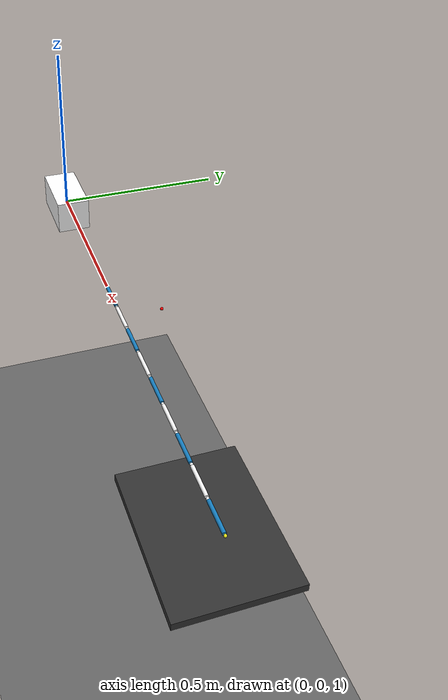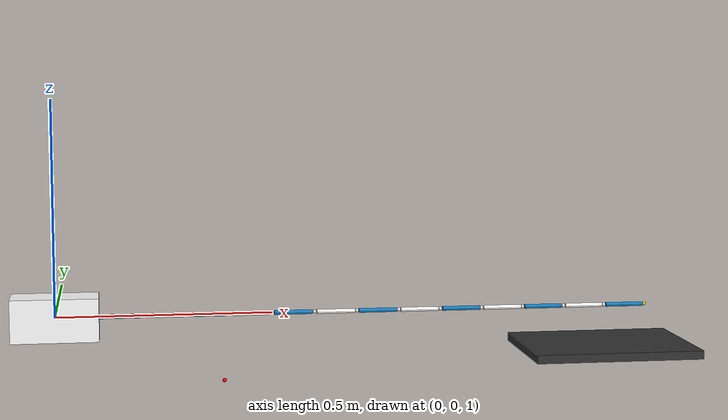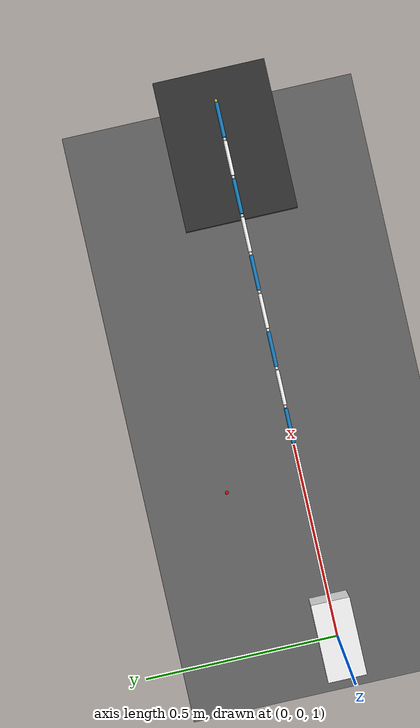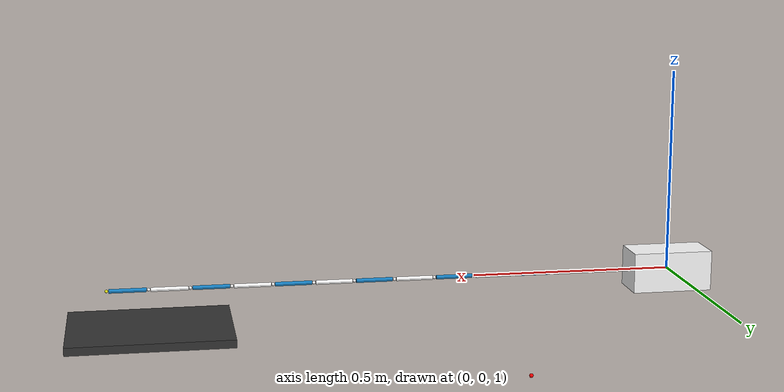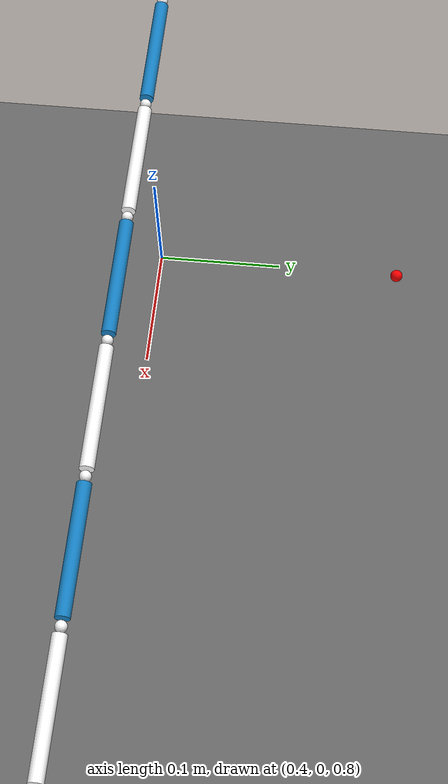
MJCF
<?xml version="1.0" encoding="utf-8"?>
<mujoco>
	<compiler angle="degree" coordinate="local" meshdir="./stls" texturedir="./textures"></compiler>
	<option timestep="0.002" gravity="0 0 0">
		<flag warmstart="enable"></flag>

	</option>

	<include file="mani_share.xml"></include>

	<worldbody>
		<geom name="floor0" pos="0.6 0 0" size="1 0.5 0.5" type="plane" condim="3" material="floor_mat"></geom>
		<body name="floor0" pos="0 0 0">
			<site name="target0" pos="0.4 0.2 0.8" size="0.005 0.005 0.005" rgba="1 0 0 1" type="sphere"></site>
		</body>

		<include file="mani_24.xml"></include>
        <body name="block0" pos="1.3 0 0.9">
			<geom name="block0" size="0.2 0.15 0.01" type="box" material="block_mat" mass="1"></geom>
		</body>

		<light directional="true" ambient="0.2 0.2 0.2" diffuse="0.8 0.8 0.8" specular="0.3 0.3 0.3" castshadow="false" pos="0 0 4" dir="0 0 -1" name="light0"></light>
	</worldbody>

	<actuator>
		<velocity joint="robot0:joint1"/>
		<velocity joint="robot0:joint2"/>
		<velocity joint="robot0:joint3"/>
		<velocity joint="robot0:joint4"/>
		<velocity joint="robot0:joint5"/>
		<velocity joint="robot0:joint6"/>
		<velocity joint="robot0:joint7"/>
		<velocity joint="robot0:joint8"/>
		<velocity joint="robot0:joint9"/>
		<velocity joint="robot0:joint10"/>
		<velocity joint="robot0:joint11"/>
		<velocity joint="robot0:joint12"/>
        <velocity joint="robot0:joint13"/>
		<velocity joint="robot0:joint14"/>
		<velocity joint="robot0:joint15"/>
		<velocity joint="robot0:joint16"/>
		<velocity joint="robot0:joint17"/>
		<velocity joint="robot0:joint18"/>
		<velocity joint="robot0:joint19"/>
		<velocity joint="robot0:joint20"/>
		<velocity joint="robot0:joint21"/>
		<velocity joint="robot0:joint22"/>
		<velocity joint="robot0:joint23"/>
		<velocity joint="robot0:joint24"/>
	</actuator>
</mujoco>

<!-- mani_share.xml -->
<mujoco>
    <asset>
        <texture type="skybox" builtin="gradient" rgb1="0.44 0.85 0.56" rgb2="0.46 0.87 0.58" width="32" height="32"></texture>
        <texture name="texture_block" file="block.png" gridsize="3 4" gridlayout=".U..LFRB.D.."></texture>

        <material name="floor_mat" specular="0" shininess="0.5" reflectance="0" rgba="0.4 0.4 0.4 1"></material>
        <material name="table_mat" specular="0" shininess="0.5" reflectance="0" rgba="0.93 0.93 0.93 1"></material>
        <material name="block_mat" specular="0" shininess="0.5" reflectance="0" rgba="0.2 0.2 0.2 1"></material>
        <material name="puck_mat" specular="0" shininess="0.5" reflectance="0" rgba="0.2 0.2 0.2 1"></material>
        <material name="robot0:geomMat" shininess="0.03" specular="0.4"></material>
        <material name="robot0:gripper_finger_mat" shininess="0.03" specular="0.4" reflectance="0"></material>
        <material name="robot0:gripper_mat" shininess="0.03" specular="0.4" reflectance="0"></material>
        <material name="robot0:arm_mat" shininess="0.03" specular="0.4" reflectance="0"></material>
        <material name="robot0:head_mat" shininess="0.03" specular="0.4" reflectance="0"></material>
        <material name="robot0:torso_mat" shininess="0.03" specular="0.4" reflectance="0"></material>
        <material name="robot0:base_mat" shininess="0.03" specular="0.4" reflectance="0"></material>
        <mesh file="hole0.stl" name="robot0:hole0"></mesh>
    </asset>

    <default>
        <default class="robot0:fetch">
            <geom margin="0.001" material="robot0:geomMat" rgba="1 1 1 1" solimp="0.99 0.99 0.01" solref="0.01 1" type="mesh" user="0"></geom>
            <joint armature="1" damping="50" frictionloss="0" stiffness="0"></joint>
            <default class="robot0:grey">
                <geom rgba="0.356 0.361 0.376 1.0"></geom>
            </default>
            <default class="robot0:blue">
                <geom rgba="0.086 0.506 0.767 1.0"></geom>
            </default>
            <default class="robot0:yellow">
                <geom rgba="0.9 0.9 0.1 1.0"></geom>
            </default>
        </default>
    </default>
</mujoco>

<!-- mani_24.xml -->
<mujoco>
	<body childclass="robot0:fetch" name="robot0:base" pos="0 0 1">
		<geom size="0.1 0.05 0.05" type="box" mass="0.002" material="table_mat"></geom>
		<body name="robot0:link0" pos="0.1475 0 0">
			<geom size="0.005 0.047" euler="0 90 0" type="cylinder" material="robot0:arm_mat" mass="0.1" class="robot0:blue"></geom>
			<body name="robot0:middle0" pos="0.0525 0 0">
				<geom size="0.004 0.004 0.004" type="sphere" material="robot0:arm_mat" mass="0.1"></geom>
				<joint axis="0 0 1"  pos="0 0 0" name="robot0:joint1" range="-90 90"></joint>
				<body name="robot0:link1" pos="0.05 0 0">
					<geom size="0.005 0.045" euler="0 90 0" type="cylinder" material="robot0:arm_mat" mass="0.1"></geom>
					<joint axis="0 1 0"  pos="-0.05 0 0" name="robot0:joint2" range="-90 90"></joint>
					<body name="robot0:middle1" pos="0.05 0 0">
						<geom size="0.004 0.004 0.004" type="sphere" material="robot0:arm_mat"></geom>
						<joint axis="0 0 1"  pos="0 0 0" name="robot0:joint3" range="-90 90"></joint>
						<body name="robot0:link2" pos="0.05 0 0">
							<geom size="0.005 0.045" euler="0 90 0" type="cylinder" material="robot0:arm_mat" mass="0.1" class="robot0:blue"></geom>
							<joint axis="0 1 0"  pos="-0.05 0 0" name="robot0:joint4" range="-90 90"></joint>
							<body name="robot0:middle2" pos="0.05 0 0">
								<geom size="0.004 0.004 0.004" type="sphere" material="robot0:arm_mat" mass="0.1"></geom>
								<joint axis="0 0 1"  pos="0 0 0" name="robot0:joint5" range="-90 90"></joint>
								<body name="robot0:link3" pos="0.05 0 0">
									<geom size="0.005 0.045" euler="0 90 0" type="cylinder" material="robot0:arm_mat" mass="0.1"></geom>
									<joint axis="0 1 0"  pos="-0.05 0 0" name="robot0:joint6" range="-90 90"></joint>
									<body name="robot0:middle3" pos="0.05 0 0">
										<geom size="0.004 0.004 0.004" type="sphere" material="robot0:arm_mat" mass="0.1"></geom>
										<joint axis="0 0 1"  pos="0 0 0" name="robot0:joint7" range="-90 90"></joint>
										<body name="robot0:link4" pos="0.05 0 0">
											<geom size="0.005 0.045" euler="0 90 0" type="cylinder" material="robot0:arm_mat" mass="0.1" class="robot0:blue"></geom>
											<joint axis="0 1 0"  pos="-0.05 0 0" name="robot0:joint8" range="-90 90"></joint>
											<body name="robot0:middle4" pos="0.05 0 0">
												<geom size="0.004 0.004 0.004" type="sphere" material="robot0:arm_mat" mass="0.1"></geom>
												<joint axis="0 0 1"  pos="0 0 0" name="robot0:joint9" range="-90 90"></joint>
												<body name="robot0:link5" pos="0.05 0 0">
													<geom size="0.005 0.045" euler="0 90 0" type="cylinder" material="robot0:arm_mat" mass="0.1"></geom>
													<joint axis="0 1 0"  pos="-0.05 0 0" name="robot0:joint10" range="-90 90"></joint>
													<body name="robot0:middle5" pos="0.05 0 0">
														<geom size="0.004 0.004 0.004" type="sphere" material="robot0:arm_mat" mass="0.1"></geom>
														<joint axis="0 0 1"  pos="0 0 0" name="robot0:joint11" range="-90 90"></joint>
														<body name="robot0:link6" pos="0.05 0 0">
															<geom size="0.005 0.045" euler="0 90 0" type="cylinder" material="robot0:arm_mat" mass="0.1" class="robot0:blue"></geom>
															<joint axis="0 1 0"  pos="-0.05 0 0" name="robot0:joint12" range="-90 90"></joint>
															<body name="robot0:middle6" pos="0.05 0 0">
																<geom size="0.004 0.004 0.004" type="sphere" material="robot0:arm_mat" mass="0.1"></geom>
																<joint axis="0 0 1"  pos="0 0 0" name="robot0:joint13" range="-90 90"></joint>
																<body name="robot0:link7" pos="0.05 0 0">
																	<geom size="0.005 0.045" euler="0 90 0" type="cylinder" material="robot0:arm_mat" mass="0.1"></geom>
																	<joint axis="0 1 0"  pos="-0.05 0 0" name="robot0:joint14" range="-90 90"></joint>
																	<body name="robot0:middle7" pos="0.05 0 0">
																		<geom size="0.004 0.004 0.004" type="sphere" material="robot0:arm_mat" mass="0.1"></geom>
																		<joint axis="0 0 1"  pos="0 0 0" name="robot0:joint15" range="-90 90"></joint>
																		<body name="robot0:link8" pos="0.05 0 0">
																			<geom size="0.005 0.045" euler="0 90 0" type="cylinder" material="robot0:arm_mat" mass="0.1" class="robot0:blue"></geom>
																			<joint axis="0 1 0"  pos="-0.05 0 0" name="robot0:joint16" range="-90 90"></joint>
																			<body name="robot0:middle8" pos="0.05 0 0">
																				<geom size="0.004 0.004 0.004" type="sphere" material="robot0:arm_mat" mass="0.1"></geom>
																				<joint axis="0 0 1"  pos="0 0 0" name="robot0:joint17" range="-90 90"></joint>
																				<body name="robot0:link9" pos="0.05 0 0">
																					<geom size="0.005 0.045" euler="0 90 0" type="cylinder" material="robot0:arm_mat" mass="0.1"></geom>
																					<joint axis="0 1 0"  pos="-0.05 0 0" name="robot0:joint18" range="-90 90"></joint>
																					<body name="robot0:middle9" pos="0.05 0 0">
																						<geom size="0.004 0.004 0.004" type="sphere" material="robot0:arm_mat" mass="0.1"></geom>
																						<joint axis="0 0 1"  pos="0 0 0" name="robot0:joint19" range="-90 90"></joint>
																						<body name="robot0:link10" pos="0.05 0 0">
																							<geom size="0.005 0.045" euler="0 90 0" type="cylinder" material="robot0:arm_mat" mass="0.1" class="robot0:blue"></geom>
																							<joint axis="0 1 0"  pos="-0.05 0 0" name="robot0:joint20" range="-90 90"></joint>
																							<body name="robot0:middle10" pos="0.05 0 0">
																								<geom size="0.004 0.004 0.004" type="sphere" material="robot0:arm_mat" mass="0.1"></geom>
																								<joint axis="0 0 1"  pos="0 0 0" name="robot0:joint21" range="-90 90"></joint>
																								<body name="robot0:link11" pos="0.05 0 0">
																									<geom size="0.005 0.045" euler="0 90 0" type="cylinder" material="robot0:arm_mat" mass="0.1"></geom>
																									<joint axis="0 1 0"  pos="-0.05 0 0" name="robot0:joint22" range="-90 90"></joint>
																									<body name="robot0:middle11" pos="0.05 0 0">
																										<geom size="0.004 0.004 0.004" type="sphere" material="robot0:arm_mat" mass="0.1"></geom>
																										<joint axis="0 0 1"  pos="0 0 0" name="robot0:joint23" range="-90 90"></joint>
																										<body name="robot0:link12" pos="0.05 0 0">
																											<geom size="0.005 0.045" euler="0 90 0" type="cylinder" material="robot0:arm_mat" mass="0.1" class="robot0:blue"></geom>
																											<joint axis="0 1 0"  pos="-0.05 0 0" name="robot0:joint24" range="-90 90"></joint>
																											<body name="robot0:middle12" pos="0.05 0 0">
																												<geom  size="0.004 0.004 0.004" type="sphere" material="robot0:arm_mat" mass="0.1" class="robot0:yellow"></geom>
																												<site name="robot0:tip" pos="0 0 0" rgba="0 0 0 0" size="0.004 0.004 0.004"></site>
																											</body>
																										</body>
																									</body>
																								</body>
																							</body>
																						</body>
																					</body>
																				</body>
																			</body>
																		</body>
																	</body>
																</body>
															</body>
														</body>
													</body>
												</body>
											</body>
										</body>
									</body>
								</body>
							</body>
						</body>
					</body>
				</body>
			</body>
		</body>
	</body>
</mujoco>
